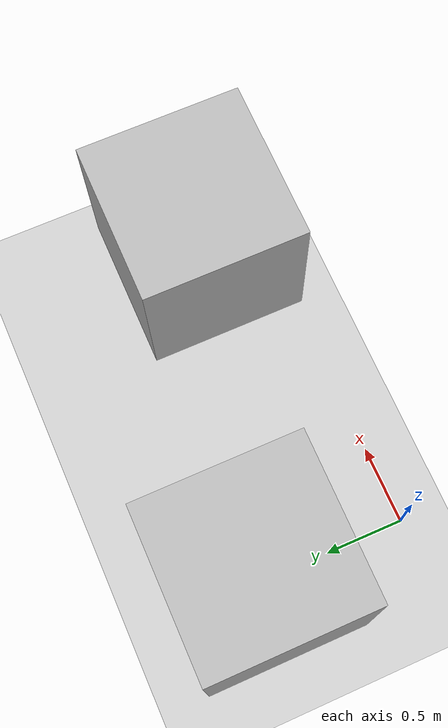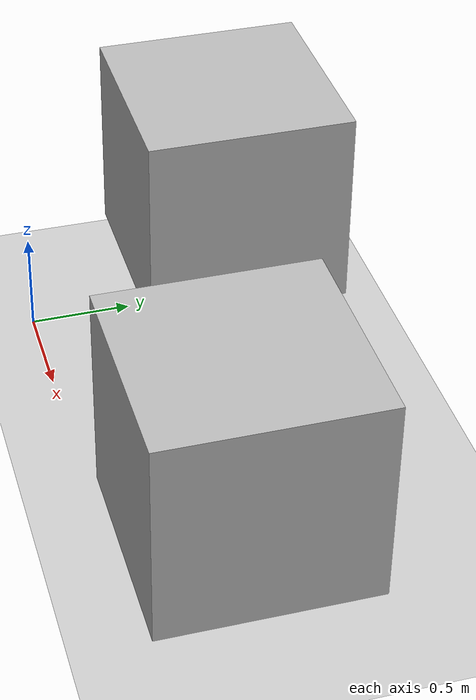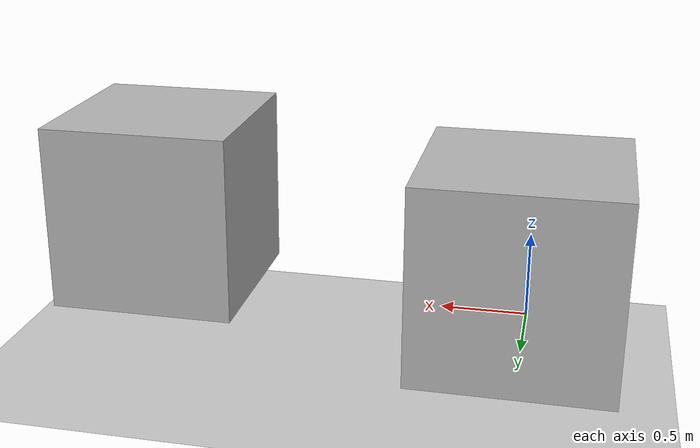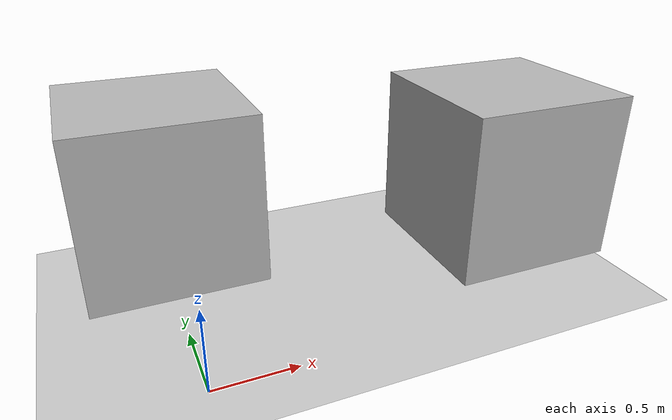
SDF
<?xml version="1.0"?>
<sdf version="1.4">
  <world name="default">
    <include>
      <uri>model://ground_plane</uri>
    </include>

    <include>
      <uri>model://sun</uri>
    </include>

  <model name="pusher">
  <pose>0 1 0.75 0 0 0</pose>
  <static>false</static>
  <link name="link">
    <collision name="box_collision">
      <geometry>
        <box>
          <size>1 1 1</size>
        </box>
      </geometry>
    </collision>
    <visual name="visual">
      <geometry>
             <box>
               <size>1 1 1</size>
             </box>
      </geometry>
    </visual>
    <sensor name='my_contact' type='contact'>
      <contact>
        <collision>box_collision</collision>
      </contact>
    </sensor>
  </link>
  <plugin name = "plugin_test" filename="libplugin_test.so"/>
</model>

 <model name="pushee">
  <pose>2 .5 0.75 0 0 0</pose>
  <static>false</static>
  <link name="link">
    <collision name="box_collision">
      <geometry>
        <box>
          <size>1 1 1</size>
        </box>
      </geometry>
    </collision>
    <visual name="visual">
      <geometry>
             <box>
               <size>1 1 1</size>
             </box>
      </geometry>
    </visual>
    <sensor name='my_contact' type='contact'>
      <contact>
        <collision>box_collision</collision>
      </contact>
    </sensor>
  </link>
</model>
      <plugin name = "quasistatic_world" filename="libgazebo_quasistatic_plugin.so">
        <pusher>pusher</pusher>
        <pushee>pushee</pushee>
      </plugin>

  </world>
</sdf>
